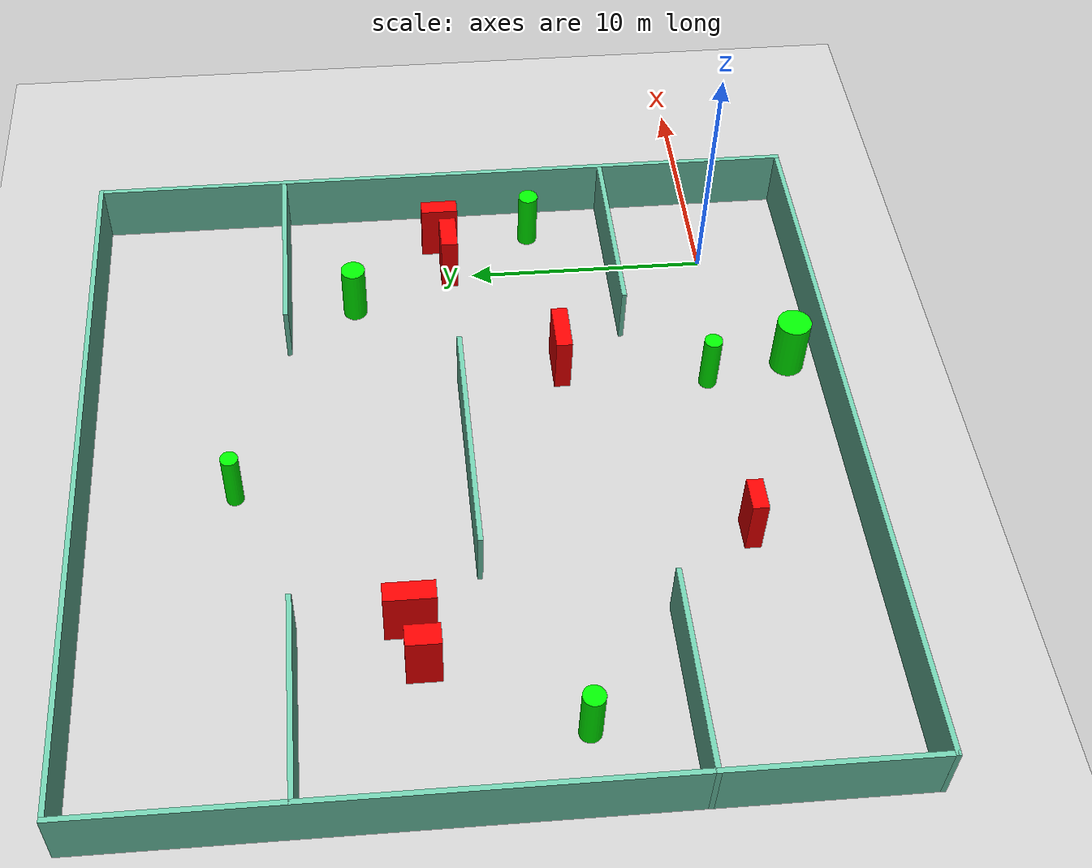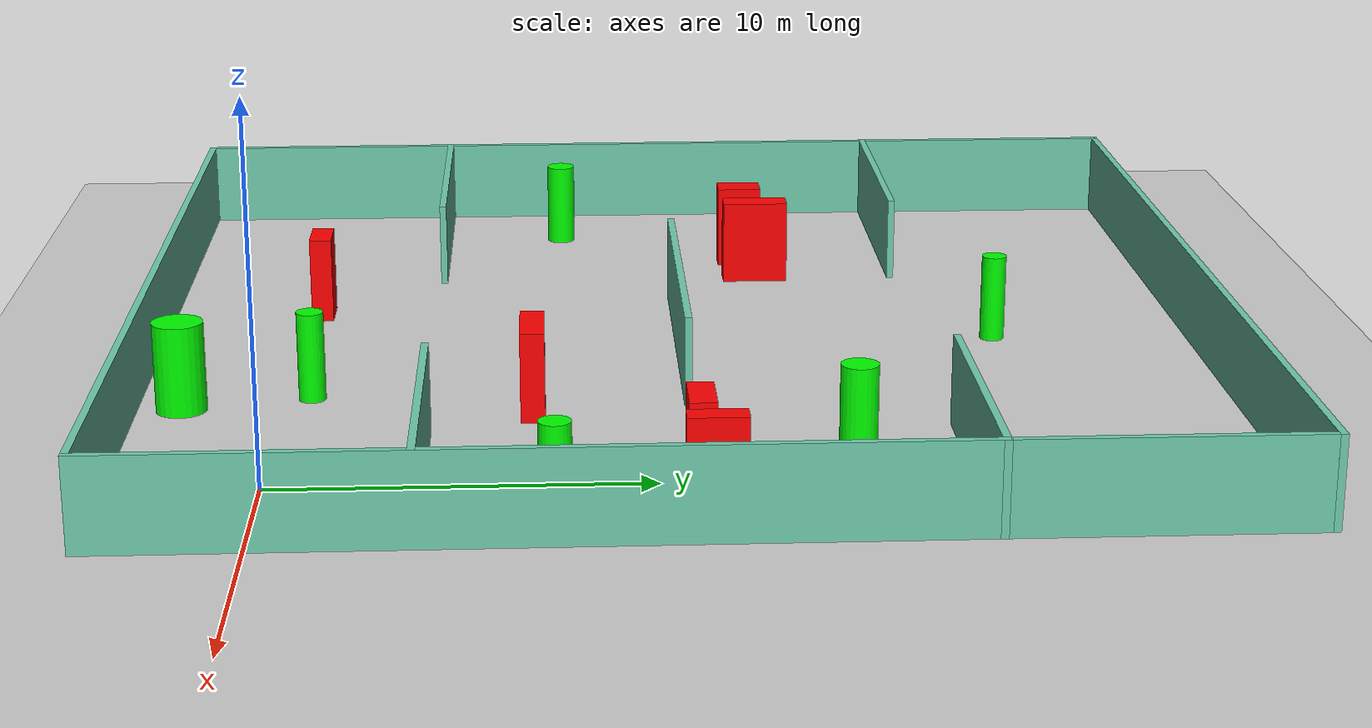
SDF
<sdf version="1.7">
 <world name="default">
  <light name="sun" type="directional">
   <pose>0 0 10 0 -0 0</pose>
   <diffuse>0.8 0.8 0.8 1</diffuse>
   <specular>0.2 0.2 0.2 1</specular>
   <attenuation>
    <range>1000</range>
    <constant>0.9</constant>
    <linear>0.01</linear>
    <quadratic>0.001</quadratic>
   </attenuation>
   <direction>-0.5 0.1 -0.9</direction>
   <spot><inner_angle>0</inner_angle><outer_angle>0</outer_angle><falloff>0</falloff></spot>
  </light>
  <model name="ground_plane">
   <static>1</static>
   <link name="link">
    <collision name="collision">
     <geometry><plane><normal>0 0 1</normal><size>100 100</size></plane></geometry>
     <surface>
      <contact><collide_bitmask>65535</collide_bitmask></contact>
      <friction><ode><mu>100</mu><mu2>50</mu2></ode></friction>
     </surface>
    </collision>
    <visual name="visual">
     <cast_shadows>0</cast_shadows>
     <geometry><plane><normal>0 0 1</normal><size>100 100</size></plane></geometry>
     <material>
      <script><uri>file://media/materials/scripts/gazebo.material</uri><name>Gazebo/Grey</name></script>
     </material>
    </visual>
   </link>
  </model>
  <gravity>0 0 -9.8</gravity>
  <magnetic_field>6e-06 2.3e-05 -4.2e-05</magnetic_field>
  <atmosphere type="adiabatic"/>
  <physics type="ode">
   <max_step_size>0.001</max_step_size>
   <real_time_factor>1</real_time_factor>
   <real_time_update_rate>1000</real_time_update_rate>
  </physics>
  <scene><ambient>0.4 0.4 0.4 1</ambient><background>0.7 0.7 0.7 1</background><shadows>1</shadows></scene>
  <spherical_coordinates>
   <surface_model>EARTH_WGS84</surface_model>
   <latitude_deg>0</latitude_deg>
   <longitude_deg>0</longitude_deg>
   <elevation>0</elevation>
   <heading_deg>0</heading_deg>
  </spherical_coordinates>
  <model name="my_base_walls">
   <link name="Wall_10">
    <collision name="Wall_10_Collision">
     <geometry><box><size>8.2 0.2 2.5</size></box></geometry>
     <pose>0 0 1.25 0 -0 0</pose>
    </collision>
    <visual name="Wall_10_Visual">
     <pose>0 0 1.25 0 -0 0</pose>
     <geometry><box><size>8.2 0.2 2.5</size></box></geometry>
     <material>
      <script><uri>file://media/materials/scripts/gazebo.material</uri><name>Gazebo/Grey</name></script>
      <ambient>0.435294 0.796078 0.67451 1</ambient>
     </material>
     <meta><layer>0</layer></meta>
    </visual>
    <pose>-11 -7 0 0 -0 0</pose>
   </link>
   <link name="Wall_12">
    <collision name="Wall_12_Collision">
     <geometry><box><size>8.2 0.2 2.5</size></box></geometry>
     <pose>0 0 1.25 0 -0 0</pose>
    </collision>
    <visual name="Wall_12_Visual">
     <pose>0 0 1.25 0 -0 0</pose>
     <geometry><box><size>8.2 0.2 2.5</size></box></geometry>
     <material>
      <script><uri>file://media/materials/scripts/gazebo.material</uri><name>Gazebo/Grey</name></script>
      <ambient>0.435294 0.796078 0.67451 1</ambient>
     </material>
     <meta><layer>0</layer></meta>
    </visual>
    <pose>-11 7 0 0 -0 0</pose>
   </link>
   <link name="Wall_14">
    <collision name="Wall_14_Collision">
     <geometry><box><size>8.2 0.2 2.5</size></box></geometry>
     <pose>0 0 1.25 0 -0 0</pose>
    </collision>
    <visual name="Wall_14_Visual">
     <pose>0 0 1.25 0 -0 0</pose>
     <geometry><box><size>8.2 0.2 2.5</size></box></geometry>
     <material>
      <script><uri>file://media/materials/scripts/gazebo.material</uri><name>Gazebo/Grey</name></script>
      <ambient>0.435294 0.796078 0.67451 1</ambient>
     </material>
     <meta><layer>0</layer></meta>
    </visual>
    <pose>11 7 0 0 -0 3.14159</pose>
   </link>
   <link name="Wall_16">
    <collision name="Wall_16_Collision">
     <geometry><box><size>10.2 0.2 2.5</size></box></geometry>
     <pose>0 0 1.25 0 -0 0</pose>
    </collision>
    <visual name="Wall_16_Visual">
     <pose>0 0 1.25 0 -0 0</pose>
     <geometry><box><size>10.2 0.2 2.5</size></box></geometry>
     <material>
      <script><uri>file://media/materials/scripts/gazebo.material</uri><name>Gazebo/Grey</name></script>
      <ambient>0.435294 0.796078 0.67451 1</ambient>
     </material>
     <meta><layer>0</layer></meta>
    </visual>
    <pose>0 0 0 0 -0 3.14159</pose>
   </link>
   <link name="Wall_2">
    <collision name="Wall_2_Collision">
     <geometry><box><size>30.2 0.2 2.5</size></box></geometry>
     <pose>0 0 1.25 0 -0 0</pose>
    </collision>
    <visual name="Wall_2_Visual">
     <pose>0 0 1.25 0 -0 0</pose>
     <geometry><box><size>30.2 0.2 2.5</size></box></geometry>
     <material>
      <script><uri>file://media/materials/scripts/gazebo.material</uri><name>Gazebo/Grey</name></script>
      <ambient>0.435294 0.796078 0.67451 1</ambient>
     </material>
     <meta><layer>0</layer></meta>
    </visual>
    <pose>0 -15 0 0 -0 3.14159</pose>
   </link>
   <link name="Wall_3">
    <collision name="Wall_3_Collision">
     <geometry><box><size>30.2 0.2 2.5</size></box></geometry>
     <pose>0 0 1.25 0 -0 0</pose>
    </collision>
    <visual name="Wall_3_Visual">
     <pose>0 0 1.25 0 -0 0</pose>
     <geometry><box><size>30.2 0.2 2.5</size></box></geometry>
     <material>
      <script><uri>file://media/materials/scripts/gazebo.material</uri><name>Gazebo/Grey</name></script>
      <ambient>0.435294 0.796078 0.67451 1</ambient>
     </material>
     <meta><layer>0</layer></meta>
    </visual>
    <pose>-15 0 0 0 -0 1.5708</pose>
   </link>
   <link name="Wall_4">
    <collision name="Wall_4_Collision">
     <geometry><box><size>30.2 0.2 2.5</size></box></geometry>
     <pose>0 0 1.25 0 -0 0</pose>
    </collision>
    <visual name="Wall_4_Visual">
     <pose>0 0 1.25 0 -0 0</pose>
     <geometry><box><size>30.2 0.2 2.5</size></box></geometry>
     <material>
      <script><uri>file://media/materials/scripts/gazebo.material</uri><name>Gazebo/Grey</name></script>
      <ambient>0.435294 0.796078 0.67451 1</ambient>
     </material>
     <meta><layer>0</layer></meta>
    </visual>
    <pose>0 15 0 0 -0 0</pose>
   </link>
   <link name="Wall_6">
    <collision name="Wall_6_Collision">
     <geometry><box><size>30.2 0.2 2.5</size></box></geometry>
     <pose>0 0 1.25 0 -0 0</pose>
    </collision>
    <visual name="Wall_6_Visual">
     <pose>0 0 1.25 0 -0 0</pose>
     <geometry><box><size>30.2 0.2 2.5</size></box></geometry>
     <material>
      <script><uri>file://media/materials/scripts/gazebo.material</uri><name>Gazebo/Grey</name></script>
      <ambient>0.435294 0.796078 0.67451 1</ambient>
     </material>
     <meta><layer>0</layer></meta>
    </visual>
    <pose>15 0 0 0 -0 1.5708</pose>
   </link>
   <link name="Wall_8">
    <collision name="Wall_8_Collision">
     <geometry><box><size>8.2 0.2 2.5</size></box></geometry>
     <pose>0 0 1.25 0 -0 0</pose>
    </collision>
    <visual name="Wall_8_Visual">
     <pose>0 0 1.25 0 -0 0</pose>
     <geometry><box><size>8.2 0.2 2.5</size></box></geometry>
     <material>
      <script><uri>file://media/materials/scripts/gazebo.material</uri><name>Gazebo/Grey</name></script>
      <ambient>0.435294 0.796078 0.67451 1</ambient>
     </material>
     <meta><layer>0</layer></meta>
    </visual>
    <pose>11 -7 0 0 -0 3.14159</pose>
   </link>
   <static>1</static>
   <pose>-11 11 0 0 -0 0</pose>
  </model>
  <model name="cylinder1">
   <static>1</static>
   <link name="link">
    <inertial>
     <mass>1</mass>
     <inertia><ixx>0.5</ixx><ixy>0</ixy><ixz>0</ixz><iyy>0.5</iyy><iyz>0</iyz><izz>1</izz></inertia>
    </inertial>
    <collision name="collision">
     <geometry><cylinder><radius>0.35065252163852845</radius><length>2.5</length></cylinder></geometry>
    </collision>
    <visual name="visual">
     <geometry><cylinder><radius>0.35065252163852845</radius><length>2.5</length></cylinder></geometry>
     <material>
      <ambient>0 1 0 1</ambient>
      <diffuse>0 1 0 1</diffuse>
      <specular>0.1 0.1 0.1 1</specular>
      <emissive>0 0 0 0</emissive>
     </material>
    </visual>
   </link>
   <pose>-11.542699368606845 20.2058903831734 1.25 0 0 0</pose>
  </model>
  <model name="cylinder2">
   <static>1</static>
   <link name="link">
    <inertial>
     <mass>1</mass>
     <inertia><ixx>0.5</ixx><ixy>0</ixy><ixz>0</ixz><iyy>0.5</iyy><iyz>0</iyz><izz>1</izz></inertia>
    </inertial>
    <collision name="collision">
     <geometry><cylinder><radius>0.37070699795628276</radius><length>2.5</length></cylinder></geometry>
    </collision>
    <visual name="visual">
     <geometry><cylinder><radius>0.37070699795628276</radius><length>2.5</length></cylinder></geometry>
     <material>
      <ambient>0 1 0 1</ambient>
      <diffuse>0 1 0 1</diffuse>
      <specular>0.1 0.1 0.1 1</specular>
      <emissive>0 0 0 0</emissive>
     </material>
    </visual>
   </link>
   <pose>-6.961614128022104 0.763838187134644 1.25 0 0 0</pose>
  </model>
  <model name="cylinder3">
   <static>1</static>
   <link name="link">
    <inertial>
     <mass>1</mass>
     <inertia><ixx>0.5</ixx><ixy>0</ixy><ixz>0</ixz><iyy>0.5</iyy><iyz>0</iyz><izz>1</izz></inertia>
    </inertial>
    <collision name="collision">
     <geometry><cylinder><radius>0.42729386296457916</radius><length>2.5</length></cylinder></geometry>
    </collision>
    <visual name="visual">
     <geometry><cylinder><radius>0.42729386296457916</radius><length>2.5</length></cylinder></geometry>
     <material>
      <ambient>0 1 0 1</ambient>
      <diffuse>0 1 0 1</diffuse>
      <specular>0.1 0.1 0.1 1</specular>
      <emissive>0 0 0 0</emissive>
     </material>
    </visual>
   </link>
   <pose>-22.88421362292584 7.695525485779328 1.25 0 0 0</pose>
  </model>
  <model name="cylinder4">
   <static>1</static>
   <link name="link">
    <inertial>
     <mass>1</mass>
     <inertia><ixx>0.5</ixx><ixy>0</ixy><ixz>0</ixz><iyy>0.5</iyy><iyz>0</iyz><izz>1</izz></inertia>
    </inertial>
    <collision name="collision">
     <geometry><cylinder><radius>0.6962786554849794</radius><length>2.5</length></cylinder></geometry>
    </collision>
    <visual name="visual">
     <geometry><cylinder><radius>0.6962786554849794</radius><length>2.5</length></cylinder></geometry>
     <material>
      <ambient>0 1 0 1</ambient>
      <diffuse>0 1 0 1</diffuse>
      <specular>0.1 0.1 0.1 1</specular>
      <emissive>0 0 0 0</emissive>
     </material>
    </visual>
   </link>
   <pose>-6.224615314578095 -2.7023193603843305 1.25 0 0 0</pose>
  </model>
  <model name="cylinder5">
   <static>1</static>
   <link name="link">
    <inertial>
     <mass>1</mass>
     <inertia><ixx>0.5</ixx><ixy>0</ixy><ixz>0</ixz><iyy>0.5</iyy><iyz>0</iyz><izz>1</izz></inertia>
    </inertial>
    <collision name="collision">
     <geometry><cylinder><radius>0.5008044607100334</radius><length>2.5</length></cylinder></geometry>
    </collision>
    <visual name="visual">
     <geometry><cylinder><radius>0.5008044607100334</radius><length>2.5</length></cylinder></geometry>
     <material>
      <ambient>0 1 0 1</ambient>
      <diffuse>0 1 0 1</diffuse>
      <specular>0.1 0.1 0.1 1</specular>
      <emissive>0 0 0 0</emissive>
     </material>
    </visual>
   </link>
   <pose>-1.7529789224773538 15.166279400168207 1.25 0 0 0</pose>
  </model>
  <model name="cylinder6">
   <static>1</static>
   <link name="link">
    <inertial>
     <mass>1</mass>
     <inertia><ixx>0.5</ixx><ixy>0</ixy><ixz>0</ixz><iyy>0.5</iyy><iyz>0</iyz><izz>1</izz></inertia>
    </inertial>
    <collision name="collision">
     <geometry><cylinder><radius>0.4134748173567678</radius><length>2.5</length></cylinder></geometry>
    </collision>
    <visual name="visual">
     <geometry><cylinder><radius>0.4134748173567678</radius><length>2.5</length></cylinder></geometry>
     <material>
      <ambient>0 1 0 1</ambient>
      <diffuse>0 1 0 1</diffuse>
      <specular>0.1 0.1 0.1 1</specular>
      <emissive>0 0 0 0</emissive>
     </material>
    </visual>
   </link>
   <pose>2.2127586877791146 7.356541513157822 1.25 0 0 0</pose>
  </model>
  <model name="box1">
   <static>1</static>
   <link name="link">
    <inertial>
     <mass>1</mass>
     <inertia><ixx>0.083</ixx><ixy>0</ixy><ixz>0</ixz><iyy>0.083</iyy><iyz>0</iyz><izz>0.083</izz></inertia>
    </inertial>
    <collision name="collision">
     <geometry><box><size>0.6687973857106974 1.5414352378511553 2.5</size></box></geometry>
    </collision>
    <visual name="visual">
     <geometry><box><size>0.6687973857106974 1.5414352378511553 2.5</size></box></geometry>
     <material>
      <ambient>1 0 0 1</ambient>
      <diffuse>1 0 0 1</diffuse>
      <specular>0.1 0.1 0.1 1</specular>
      <emissive>0 0 0 0</emissive>
     </material>
    </visual>
    <sensor name="my_contact" type="contact">
     <contact><collision>box_collision</collision><topic>__default_topic__</topic></contact>
    </sensor>
   </link>
   <pose>1.8694493793992741 11.302015053543109 1.25 0 0 0</pose>
  </model>
  <model name="box2">
   <static>1</static>
   <link name="link">
    <inertial>
     <mass>1</mass>
     <inertia><ixx>0.083</ixx><ixy>0</ixy><ixz>0</ixz><iyy>0.083</iyy><iyz>0</iyz><izz>0.083</izz></inertia>
    </inertial>
    <collision name="collision">
     <geometry><box><size>1.6340451346367082 0.7021579182151176 2.5</size></box></geometry>
    </collision>
    <visual name="visual">
     <geometry><box><size>1.6340451346367082 0.7021579182151176 2.5</size></box></geometry>
     <material>
      <ambient>1 0 0 1</ambient>
      <diffuse>1 0 0 1</diffuse>
      <specular>0.1 0.1 0.1 1</specular>
      <emissive>0 0 0 0</emissive>
     </material>
    </visual>
    <sensor name="my_contact" type="contact">
     <contact><collision>box_collision</collision><topic>__default_topic__</topic></contact>
    </sensor>
   </link>
   <pose>0.2806963843712502 11.00268486355354 1.25 0 0 0</pose>
  </model>
  <model name="box3">
   <static>1</static>
   <link name="link">
    <inertial>
     <mass>1</mass>
     <inertia><ixx>0.083</ixx><ixy>0</ixy><ixz>0</ixz><iyy>0.083</iyy><iyz>0</iyz><izz>0.083</izz></inertia>
    </inertial>
    <collision name="collision">
     <geometry><box><size>1.3631328983556852 0.6383397441783901 2.5</size></box></geometry>
    </collision>
    <visual name="visual">
     <geometry><box><size>1.3631328983556852 0.6383397441783901 2.5</size></box></geometry>
     <material>
      <ambient>1 0 0 1</ambient>
      <diffuse>1 0 0 1</diffuse>
      <specular>0.1 0.1 0.1 1</specular>
      <emissive>0 0 0 0</emissive>
     </material>
    </visual>
    <sensor name="my_contact" type="contact">
     <contact><collision>box_collision</collision><topic>__default_topic__</topic></contact>
    </sensor>
   </link>
   <pose>-14.799965712456245 0.4978903520716016 1.25 0 0 0</pose>
  </model>
  <model name="box4">
   <static>1</static>
   <link name="link">
    <inertial>
     <mass>1</mass>
     <inertia><ixx>0.083</ixx><ixy>0</ixy><ixz>0</ixz><iyy>0.083</iyy><iyz>0</iyz><izz>0.083</izz></inertia>
    </inertial>
    <collision name="collision">
     <geometry><box><size>2.070727230364434 0.660726461838951 2.5</size></box></geometry>
    </collision>
    <visual name="visual">
     <geometry><box><size>2.070727230364434 0.660726461838951 2.5</size></box></geometry>
     <material>
      <ambient>1 0 0 1</ambient>
      <diffuse>1 0 0 1</diffuse>
      <specular>0.1 0.1 0.1 1</specular>
      <emissive>0 0 0 0</emissive>
     </material>
    </visual>
    <sensor name="my_contact" type="contact">
     <contact><collision>box_collision</collision><topic>__default_topic__</topic></contact>
    </sensor>
   </link>
   <pose>-5.693475922586199 6.792290924859319 1.25 0 0 0</pose>
  </model>
  <model name="box5">
   <static>1</static>
   <link name="link">
    <inertial>
     <mass>1</mass>
     <inertia><ixx>0.083</ixx><ixy>0</ixy><ixz>0</ixz><iyy>0.083</iyy><iyz>0</iyz><izz>0.083</izz></inertia>
    </inertial>
    <collision name="collision">
     <geometry><box><size>0.8712931304469326 1.329539122504528 2.5</size></box></geometry>
    </collision>
    <visual name="visual">
     <geometry><box><size>0.8712931304469326 1.329539122504528 2.5</size></box></geometry>
     <material>
      <ambient>1 0 0 1</ambient>
      <diffuse>1 0 0 1</diffuse>
      <specular>0.1 0.1 0.1 1</specular>
      <emissive>0 0 0 0</emissive>
     </material>
    </visual>
    <sensor name="my_contact" type="contact">
     <contact><collision>box_collision</collision><topic>__default_topic__</topic></contact>
    </sensor>
   </link>
   <pose>-19.97111551766573 13.34703528643512 1.25 0 0 0</pose>
  </model>
  <model name="box6">
   <static>1</static>
   <link name="link">
    <inertial>
     <mass>1</mass>
     <inertia><ixx>0.083</ixx><ixy>0</ixy><ixz>0</ixz><iyy>0.083</iyy><iyz>0</iyz><izz>0.083</izz></inertia>
    </inertial>
    <collision name="collision">
     <geometry><box><size>0.7916839787809853 1.9708726526988227 2.5</size></box></geometry>
    </collision>
    <visual name="visual">
     <geometry><box><size>0.7916839787809853 1.9708726526988227 2.5</size></box></geometry>
     <material>
      <ambient>1 0 0 1</ambient>
      <diffuse>1 0 0 1</diffuse>
      <specular>0.1 0.1 0.1 1</specular>
      <emissive>0 0 0 0</emissive>
     </material>
    </visual>
    <sensor name="my_contact" type="contact">
     <contact><collision>box_collision</collision><topic>__default_topic__</topic></contact>
    </sensor>
   </link>
   <pose>-18.102389270363844 13.719087207037191 1.25 0 0 0</pose>
  </model>
 </world>
</sdf>
